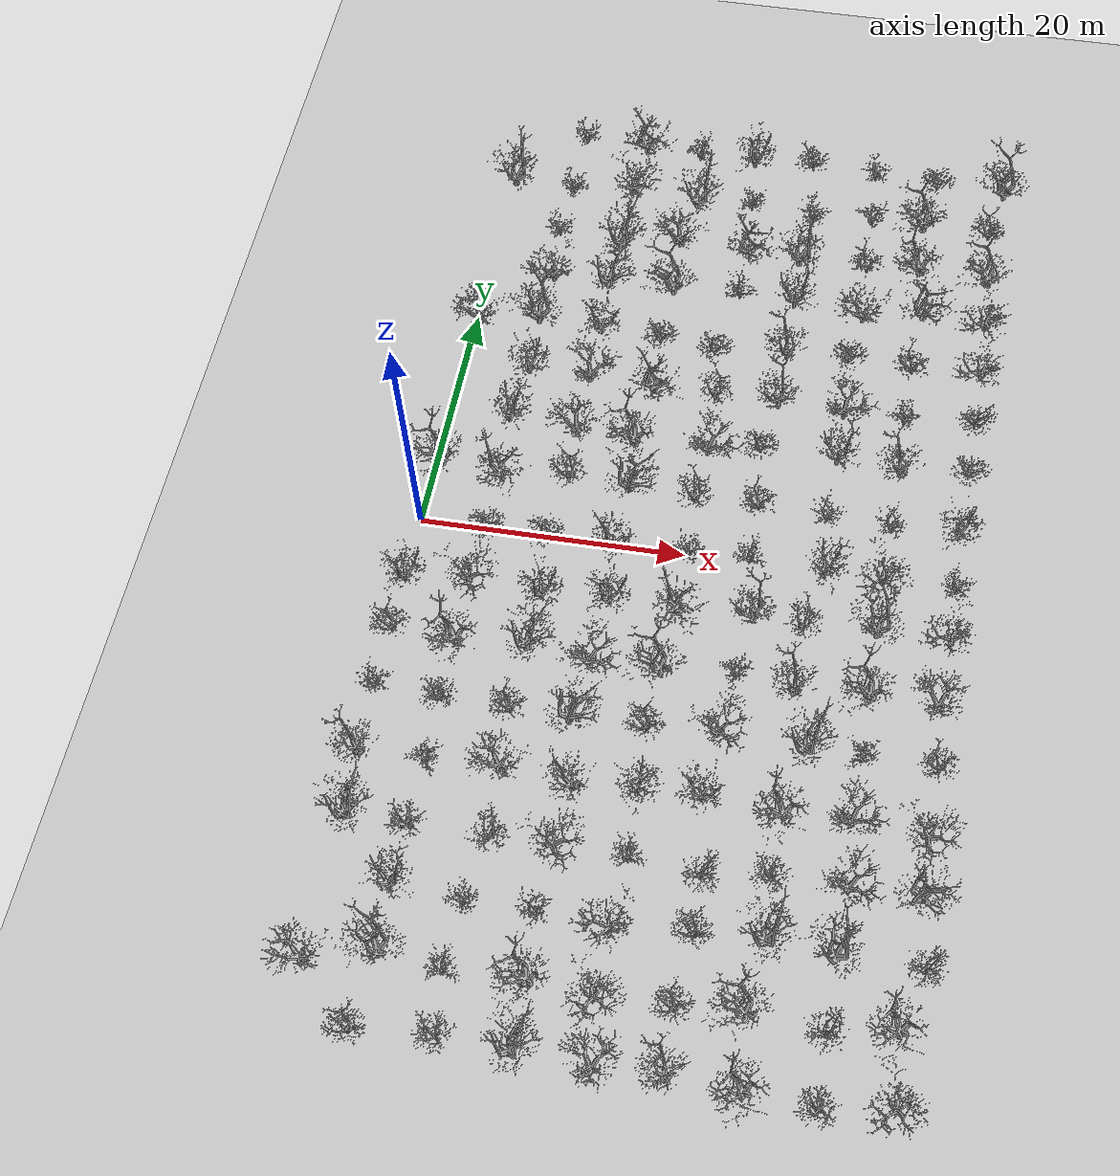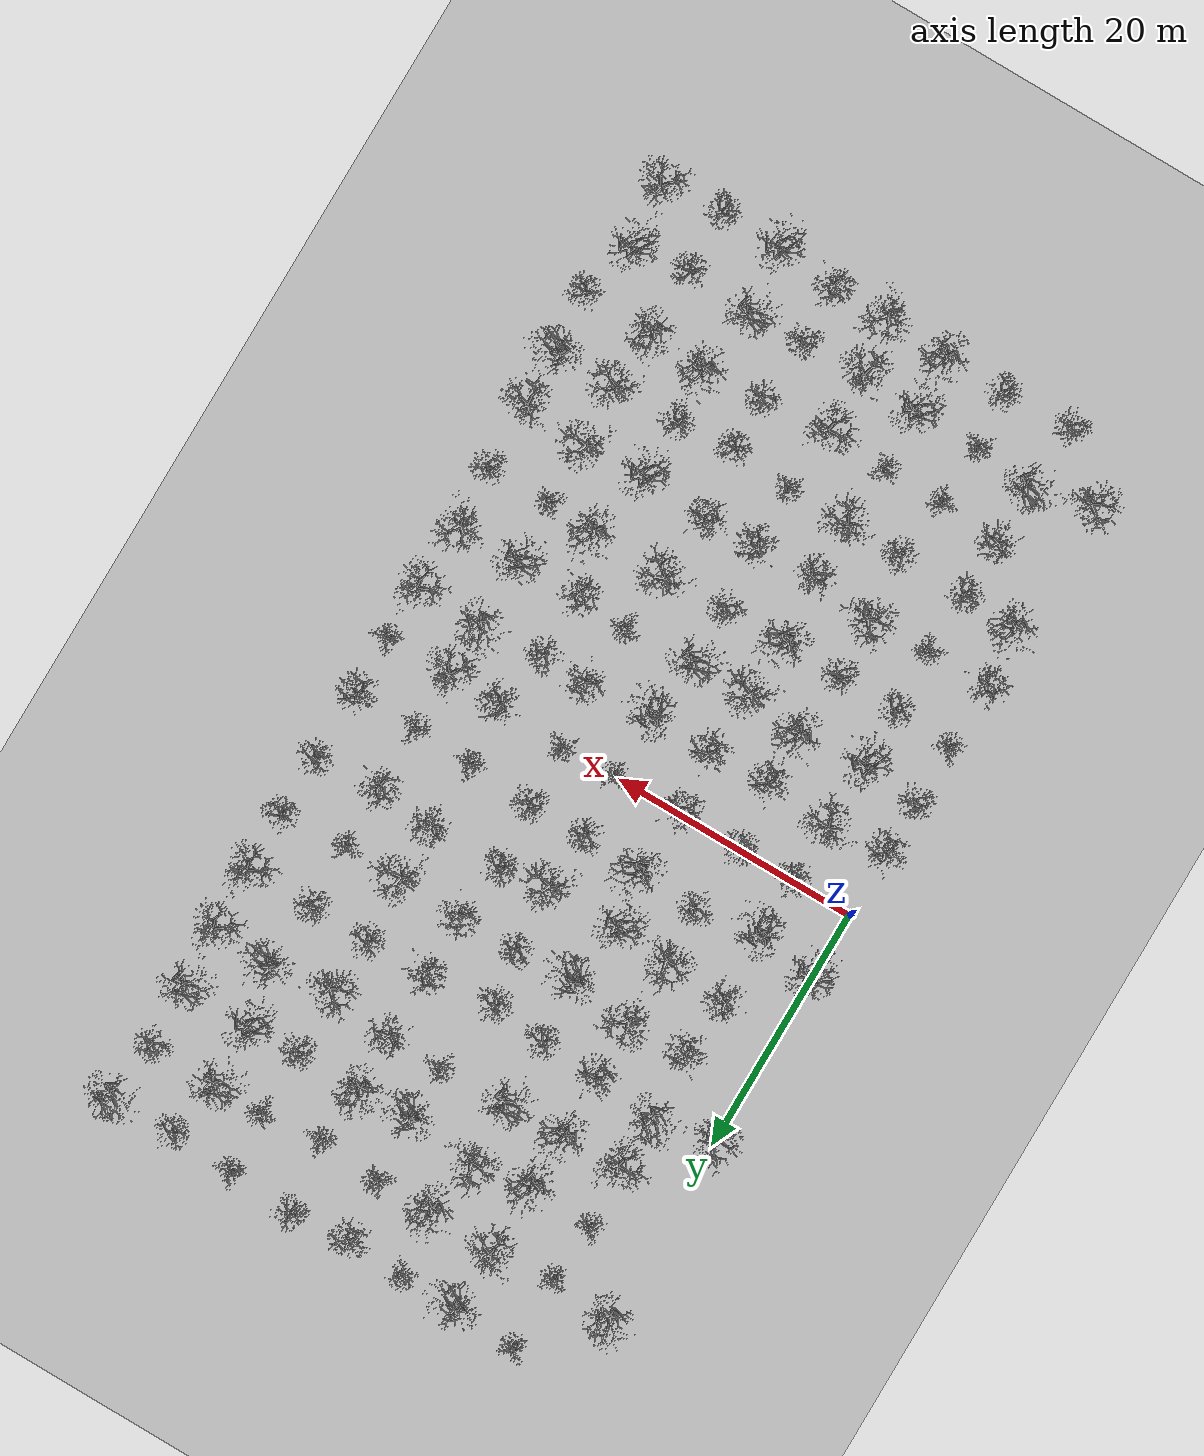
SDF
<sdf version="1.8">
 <world name="random_flat_forest">
  <model name="ground_plane">
   <static>true</static>
   <link name="link">
    <collision name="collision">
     <geometry><plane><normal>0 0 1</normal><size>100 100</size></plane></geometry>
    </collision>
    <visual name="visual">
     <geometry><plane><normal>0 0 1</normal><size>100 100</size></plane></geometry>
     <material>
      <script><uri>file://media/materials/scripts/gazebo.material</uri><name>Gazebo/Gray</name></script>
     </material>
    </visual>
   </link>
  </model>
  <include>
   <uri>model://random_tree_0</uri>
   <name>tree_137</name>
   <pose>0.17 -35.61 0 0 0 2.75</pose>
   <scale>0.95 0.91 0.93</scale>
  </include>
  <include>
   <uri>model://random_tree_2</uri>
   <name>tree_139</name>
   <pose>0.41 -24.93 0 0 0 5.55</pose>
   <scale>1.12 1.20 0.94</scale>
  </include>
  <include>
   <uri>model://random_tree_3</uri>
   <name>tree_140</name>
   <pose>0.11 -20.01 0 0 0 1.44</pose>
   <scale>0.96 1.01 1.20</scale>
  </include>
  <include>
   <uri>model://random_tree_1</uri>
   <name>tree_141</name>
   <pose>0.04 -14.54 0 0 0 2.81</pose>
   <scale>1.13 1.20 1.03</scale>
  </include>
  <include>
   <uri>model://random_tree_4</uri>
   <name>tree_142</name>
   <pose>0.13 -9.78 0 0 0 6.24</pose>
   <scale>1.02 1.07 0.99</scale>
  </include>
  <include>
   <uri>model://random_tree_3</uri>
   <name>tree_143</name>
   <pose>0.03 -5.33 0 0 0 3.39</pose>
   <scale>0.92 0.87 1.06</scale>
  </include>
  <include>
   <uri>model://random_tree_2</uri>
   <name>tree_145</name>
   <pose>0.42 5.44 0 0 0 1.75</pose>
   <scale>1.17 1.25 1.05</scale>
  </include>
  <include>
   <uri>model://random_tree_0</uri>
   <name>tree_148</name>
   <pose>0.27 19.60 0 0 0 2.46</pose>
   <scale>1.11 1.04 1.16</scale>
  </include>
  <include>
   <uri>model://random_tree_2</uri>
   <name>tree_151</name>
   <pose>0.04 34.80 0 0 0 5.98</pose>
   <scale>1.03 1.07 1.11</scale>
  </include>
  <include>
   <uri>model://random_tree_4</uri>
   <name>tree_153</name>
   <pose>4.48 -39.91 0 0 0 5.88</pose>
   <scale>1.03 0.98 1.17</scale>
  </include>
  <include>
   <uri>model://random_tree_2</uri>
   <name>tree_154</name>
   <pose>5.12 -34.40 0 0 0 0.73</pose>
   <scale>1.14 1.07 1.04</scale>
  </include>
  <include>
   <uri>model://random_tree_3</uri>
   <name>tree_155</name>
   <pose>4.68 -29.61 0 0 0 5.25</pose>
   <scale>0.96 0.93 0.94</scale>
  </include>
  <include>
   <uri>model://random_tree_4</uri>
   <name>tree_156</name>
   <pose>4.91 -24.94 0 0 0 1.19</pose>
   <scale>0.96 1.04 1.09</scale>
  </include>
  <include>
   <uri>model://random_tree_1</uri>
   <name>tree_157</name>
   <pose>5.05 -20.06 0 0 0 5.87</pose>
   <scale>1.05 1.09 0.97</scale>
  </include>
  <include>
   <uri>model://random_tree_4</uri>
   <name>tree_158</name>
   <pose>4.89 -14.86 0 0 0 1.47</pose>
   <scale>0.93 0.86 1.01</scale>
  </include>
  <include>
   <uri>model://random_tree_2</uri>
   <name>tree_159</name>
   <pose>4.94 -10.15 0 0 0 2.24</pose>
   <scale>1.14 1.25 1.20</scale>
  </include>
  <include>
   <uri>model://random_tree_0</uri>
   <name>tree_160</name>
   <pose>4.66 -4.83 0 0 0 5.36</pose>
   <scale>1.03 1.11 0.92</scale>
  </include>
  <include>
   <uri>model://random_tree_4</uri>
   <name>tree_161</name>
   <pose>5.01 -0.11 0 0 0 2.17</pose>
   <scale>1.10 1.03 0.91</scale>
  </include>
  <include>
   <uri>model://random_tree_2</uri>
   <name>tree_162</name>
   <pose>5.14 4.81 0 0 0 2.87</pose>
   <scale>0.97 1.07 1.15</scale>
  </include>
  <include>
   <uri>model://random_tree_3</uri>
   <name>tree_163</name>
   <pose>4.61 10.32 0 0 0 4.64</pose>
   <scale>1.04 1.02 1.06</scale>
  </include>
  <include>
   <uri>model://random_tree_3</uri>
   <name>tree_164</name>
   <pose>5.16 15.21 0 0 0 3.76</pose>
   <scale>1.18 1.17 1.19</scale>
  </include>
  <include>
   <uri>model://random_tree_2</uri>
   <name>tree_165</name>
   <pose>4.91 20.38 0 0 0 0.21</pose>
   <scale>1.01 1.04 1.18</scale>
  </include>
  <include>
   <uri>model://random_tree_0</uri>
   <name>tree_166</name>
   <pose>5.25 24.89 0 0 0 3.48</pose>
   <scale>1.10 1.19 1.13</scale>
  </include>
  <include>
   <uri>model://random_tree_1</uri>
   <name>tree_167</name>
   <pose>4.78 29.83 0 0 0 2.90</pose>
   <scale>1.14 1.17 1.17</scale>
  </include>
  <include>
   <uri>model://random_tree_1</uri>
   <name>tree_168</name>
   <pose>5.04 34.59 0 0 0 3.39</pose>
   <scale>1.17 1.26 1.04</scale>
  </include>
  <include>
   <uri>model://random_tree_1</uri>
   <name>tree_169</name>
   <pose>5.08 40.49 0 0 0 3.17</pose>
   <scale>1.11 1.01 0.92</scale>
  </include>
  <include>
   <uri>model://random_tree_4</uri>
   <name>tree_170</name>
   <pose>10.16 -39.41 0 0 0 1.00</pose>
   <scale>0.97 0.93 1.13</scale>
  </include>
  <include>
   <uri>model://random_tree_1</uri>
   <name>tree_171</name>
   <pose>9.62 -34.99 0 0 0 0.19</pose>
   <scale>0.94 0.94 1.16</scale>
  </include>
  <include>
   <uri>model://random_tree_1</uri>
   <name>tree_172</name>
   <pose>9.84 -30.00 0 0 0 3.99</pose>
   <scale>1.10 1.12 0.97</scale>
  </include>
  <include>
   <uri>model://random_tree_4</uri>
   <name>tree_173</name>
   <pose>10.51 -25.10 0 0 0 4.16</pose>
   <scale>1.09 1.00 1.19</scale>
  </include>
  <include>
   <uri>model://random_tree_0</uri>
   <name>tree_174</name>
   <pose>10.17 -19.73 0 0 0 2.50</pose>
   <scale>0.92 0.88 1.11</scale>
  </include>
  <include>
   <uri>model://random_tree_4</uri>
   <name>tree_175</name>
   <pose>9.92 -15.06 0 0 0 0.01</pose>
   <scale>1.20 1.30 1.18</scale>
  </include>
  <include>
   <uri>model://random_tree_2</uri>
   <name>tree_176</name>
   <pose>10.04 -9.75 0 0 0 5.20</pose>
   <scale>0.94 0.99 0.93</scale>
  </include>
  <include>
   <uri>model://random_tree_3</uri>
   <name>tree_177</name>
   <pose>10.21 -5.32 0 0 0 3.35</pose>
   <scale>0.98 1.03 1.17</scale>
  </include>
  <include>
   <uri>model://random_tree_4</uri>
   <name>tree_178</name>
   <pose>9.58 -0.07 0 0 0 1.92</pose>
   <scale>1.11 1.06 1.02</scale>
  </include>
  <include>
   <uri>model://random_tree_4</uri>
   <name>tree_179</name>
   <pose>10.19 5.44 0 0 0 5.21</pose>
   <scale>1.01 1.07 1.01</scale>
  </include>
  <include>
   <uri>model://random_tree_0</uri>
   <name>tree_180</name>
   <pose>10.01 9.86 0 0 0 2.09</pose>
   <scale>1.05 0.95 1.19</scale>
  </include>
  <include>
   <uri>model://random_tree_0</uri>
   <name>tree_181</name>
   <pose>10.10 15.20 0 0 0 0.95</pose>
   <scale>0.96 0.91 0.91</scale>
  </include>
  <include>
   <uri>model://random_tree_3</uri>
   <name>tree_182</name>
   <pose>10.07 20.11 0 0 0 2.85</pose>
   <scale>0.95 0.91 1.16</scale>
  </include>
  <include>
   <uri>model://random_tree_2</uri>
   <name>tree_183</name>
   <pose>9.73 24.93 0 0 0 5.09</pose>
   <scale>1.04 1.00 1.07</scale>
  </include>
  <include>
   <uri>model://random_tree_2</uri>
   <name>tree_184</name>
   <pose>9.93 29.25 0 0 0 5.39</pose>
   <scale>1.05 1.08 1.17</scale>
  </include>
  <include>
   <uri>model://random_tree_0</uri>
   <name>tree_185</name>
   <pose>10.03 35.43 0 0 0 4.93</pose>
   <scale>1.08 1.19 0.92</scale>
  </include>
  <include>
   <uri>model://random_tree_2</uri>
   <name>tree_186</name>
   <pose>10.24 40.28 0 0 0 3.68</pose>
   <scale>0.96 0.89 1.12</scale>
  </include>
  <include>
   <uri>model://random_tree_2</uri>
   <name>tree_187</name>
   <pose>15.02 -39.65 0 0 0 5.37</pose>
   <scale>1.03 0.95 0.97</scale>
  </include>
  <include>
   <uri>model://random_tree_2</uri>
   <name>tree_188</name>
   <pose>15.25 -34.85 0 0 0 1.82</pose>
   <scale>1.17 1.15 0.91</scale>
  </include>
  <include>
   <uri>model://random_tree_1</uri>
   <name>tree_189</name>
   <pose>14.82 -30.00 0 0 0 1.62</pose>
   <scale>1.06 1.03 1.19</scale>
  </include>
  <include>
   <uri>model://random_tree_0</uri>
   <name>tree_190</name>
   <pose>15.00 -24.99 0 0 0 5.48</pose>
   <scale>0.98 0.98 0.94</scale>
  </include>
  <include>
   <uri>model://random_tree_3</uri>
   <name>tree_191</name>
   <pose>15.39 -20.39 0 0 0 1.85</pose>
   <scale>1.13 1.15 1.12</scale>
  </include>
  <include>
   <uri>model://random_tree_2</uri>
   <name>tree_192</name>
   <pose>14.26 -15.07 0 0 0 4.72</pose>
   <scale>1.03 1.07 1.19</scale>
  </include>
  <include>
   <uri>model://random_tree_0</uri>
   <name>tree_193</name>
   <pose>14.71 -10.40 0 0 0 6.18</pose>
   <scale>1.04 1.04 1.13</scale>
  </include>
  <include>
   <uri>model://random_tree_3</uri>
   <name>tree_194</name>
   <pose>15.22 -4.96 0 0 0 3.12</pose>
   <scale>0.94 1.00 1.18</scale>
  </include>
  <include>
   <uri>model://random_tree_3</uri>
   <name>tree_195</name>
   <pose>14.82 -0.15 0 0 0 2.35</pose>
   <scale>1.02 1.05 0.97</scale>
  </include>
  <include>
   <uri>model://random_tree_2</uri>
   <name>tree_196</name>
   <pose>14.89 5.19 0 0 0 4.69</pose>
   <scale>1.01 0.92 0.94</scale>
  </include>
  <include>
   <uri>model://random_tree_2</uri>
   <name>tree_197</name>
   <pose>14.62 9.55 0 0 0 1.73</pose>
   <scale>1.20 1.19 1.17</scale>
  </include>
  <include>
   <uri>model://random_tree_2</uri>
   <name>tree_198</name>
   <pose>15.18 14.90 0 0 0 3.48</pose>
   <scale>0.95 0.85 0.91</scale>
  </include>
  <include>
   <uri>model://random_tree_4</uri>
   <name>tree_199</name>
   <pose>14.85 19.82 0 0 0 2.03</pose>
   <scale>1.00 0.99 1.11</scale>
  </include>
  <include>
   <uri>model://random_tree_2</uri>
   <name>tree_200</name>
   <pose>15.06 25.07 0 0 0 1.10</pose>
   <scale>1.04 1.11 0.99</scale>
  </include>
  <include>
   <uri>model://random_tree_0</uri>
   <name>tree_201</name>
   <pose>14.76 30.22 0 0 0 2.17</pose>
   <scale>0.99 0.91 0.90</scale>
  </include>
  <include>
   <uri>model://random_tree_2</uri>
   <name>tree_202</name>
   <pose>15.53 34.64 0 0 0 5.63</pose>
   <scale>1.15 1.26 1.04</scale>
  </include>
  <include>
   <uri>model://random_tree_1</uri>
   <name>tree_203</name>
   <pose>14.91 40.02 0 0 0 6.02</pose>
   <scale>0.92 0.98 1.02</scale>
  </include>
  <include>
   <uri>model://random_tree_0</uri>
   <name>tree_204</name>
   <pose>20.46 -40.00 0 0 0 1.23</pose>
   <scale>1.00 0.97 1.19</scale>
  </include>
  <include>
   <uri>model://random_tree_0</uri>
   <name>tree_205</name>
   <pose>19.69 -35.25 0 0 0 4.70</pose>
   <scale>1.00 0.96 0.97</scale>
  </include>
  <include>
   <uri>model://random_tree_0</uri>
   <name>tree_206</name>
   <pose>19.91 -30.30 0 0 0 3.49</pose>
   <scale>0.99 0.92 0.98</scale>
  </include>
  <include>
   <uri>model://random_tree_1</uri>
   <name>tree_207</name>
   <pose>20.24 -25.12 0 0 0 0.35</pose>
   <scale>1.03 1.02 1.04</scale>
  </include>
  <include>
   <uri>model://random_tree_3</uri>
   <name>tree_208</name>
   <pose>19.93 -20.07 0 0 0 4.12</pose>
   <scale>1.16 1.23 1.11</scale>
  </include>
  <include>
   <uri>model://random_tree_4</uri>
   <name>tree_209</name>
   <pose>19.73 -15.02 0 0 0 5.87</pose>
   <scale>0.98 0.93 0.98</scale>
  </include>
  <include>
   <uri>model://random_tree_2</uri>
   <name>tree_210</name>
   <pose>19.93 -10.35 0 0 0 1.26</pose>
   <scale>0.93 0.89 1.13</scale>
  </include>
  <include>
   <uri>model://random_tree_2</uri>
   <name>tree_211</name>
   <pose>20.39 -5.03 0 0 0 2.93</pose>
   <scale>0.92 0.91 1.02</scale>
  </include>
  <include>
   <uri>model://random_tree_1</uri>
   <name>tree_212</name>
   <pose>20.34 0.01 0 0 0 3.60</pose>
   <scale>0.92 1.00 1.05</scale>
  </include>
  <include>
   <uri>model://random_tree_4</uri>
   <name>tree_213</name>
   <pose>19.98 4.91 0 0 0 4.77</pose>
   <scale>1.05 1.14 1.04</scale>
  </include>
  <include>
   <uri>model://random_tree_0</uri>
   <name>tree_214</name>
   <pose>20.28 9.54 0 0 0 0.14</pose>
   <scale>0.93 1.00 0.94</scale>
  </include>
  <include>
   <uri>model://random_tree_4</uri>
   <name>tree_215</name>
   <pose>20.01 14.84 0 0 0 4.68</pose>
   <scale>1.18 1.14 1.05</scale>
  </include>
  <include>
   <uri>model://random_tree_4</uri>
   <name>tree_216</name>
   <pose>19.31 19.33 0 0 0 1.97</pose>
   <scale>0.93 0.85 1.13</scale>
  </include>
  <include>
   <uri>model://random_tree_1</uri>
   <name>tree_217</name>
   <pose>20.42 25.36 0 0 0 0.61</pose>
   <scale>1.02 1.07 1.16</scale>
  </include>
  <include>
   <uri>model://random_tree_2</uri>
   <name>tree_218</name>
   <pose>20.47 29.88 0 0 0 3.66</pose>
   <scale>1.00 1.07 1.15</scale>
  </include>
  <include>
   <uri>model://random_tree_1</uri>
   <name>tree_219</name>
   <pose>20.04 35.03 0 0 0 4.53</pose>
   <scale>0.98 1.07 1.06</scale>
  </include>
  <include>
   <uri>model://random_tree_3</uri>
   <name>tree_220</name>
   <pose>19.58 40.00 0 0 0 3.34</pose>
   <scale>1.18 1.25 1.11</scale>
  </include>
  <include>
   <uri>model://random_tree_3</uri>
   <name>tree_221</name>
   <pose>25.18 -39.85 0 0 0 0.79</pose>
   <scale>1.05 0.98 1.15</scale>
  </include>
  <include>
   <uri>model://random_tree_4</uri>
   <name>tree_222</name>
   <pose>25.00 -35.16 0 0 0 6.08</pose>
   <scale>1.16 1.06 0.93</scale>
  </include>
  <include>
   <uri>model://random_tree_4</uri>
   <name>tree_223</name>
   <pose>25.44 -29.91 0 0 0 5.66</pose>
   <scale>0.91 0.83 1.16</scale>
  </include>
  <include>
   <uri>model://random_tree_4</uri>
   <name>tree_224</name>
   <pose>25.23 -25.63 0 0 0 3.20</pose>
   <scale>0.98 0.96 0.99</scale>
  </include>
  <include>
   <uri>model://random_tree_3</uri>
   <name>tree_225</name>
   <pose>24.43 -19.75 0 0 0 2.55</pose>
   <scale>1.11 1.09 1.17</scale>
  </include>
  <include>
   <uri>model://random_tree_0</uri>
   <name>tree_226</name>
   <pose>24.71 -14.59 0 0 0 5.80</pose>
   <scale>1.10 1.13 1.14</scale>
  </include>
  <include>
   <uri>model://random_tree_1</uri>
   <name>tree_227</name>
   <pose>25.28 -9.85 0 0 0 5.33</pose>
   <scale>1.03 1.03 1.19</scale>
  </include>
  <include>
   <uri>model://random_tree_3</uri>
   <name>tree_228</name>
   <pose>25.87 -4.89 0 0 0 0.08</pose>
   <scale>1.20 1.19 1.16</scale>
  </include>
  <include>
   <uri>model://random_tree_1</uri>
   <name>tree_229</name>
   <pose>24.86 0.13 0 0 0 0.17</pose>
   <scale>1.02 1.01 1.02</scale>
  </include>
  <include>
   <uri>model://random_tree_4</uri>
   <name>tree_230</name>
   <pose>24.85 5.02 0 0 0 0.05</pose>
   <scale>1.14 1.21 1.02</scale>
  </include>
  <include>
   <uri>model://random_tree_4</uri>
   <name>tree_231</name>
   <pose>24.24 10.34 0 0 0 1.76</pose>
   <scale>1.09 1.10 1.03</scale>
  </include>
  <include>
   <uri>model://random_tree_3</uri>
   <name>tree_232</name>
   <pose>25.01 14.88 0 0 0 0.29</pose>
   <scale>1.12 1.21 1.12</scale>
  </include>
  <include>
   <uri>model://random_tree_3</uri>
   <name>tree_233</name>
   <pose>25.00 19.82 0 0 0 0.87</pose>
   <scale>0.94 0.88 0.93</scale>
  </include>
  <include>
   <uri>model://random_tree_3</uri>
   <name>tree_234</name>
   <pose>24.87 25.17 0 0 0 5.40</pose>
   <scale>1.06 1.05 0.96</scale>
  </include>
  <include>
   <uri>model://random_tree_2</uri>
   <name>tree_235</name>
   <pose>24.68 29.71 0 0 0 5.84</pose>
   <scale>1.07 1.16 1.14</scale>
  </include>
  <include>
   <uri>model://random_tree_1</uri>
   <name>tree_236</name>
   <pose>25.25 34.56 0 0 0 2.42</pose>
   <scale>1.01 1.08 0.96</scale>
  </include>
  <include>
   <uri>model://random_tree_4</uri>
   <name>tree_237</name>
   <pose>24.49 40.41 0 0 0 1.33</pose>
   <scale>1.00 1.04 1.02</scale>
  </include>
  <include>
   <uri>model://random_tree_2</uri>
   <name>tree_238</name>
   <pose>30.26 -40.04 0 0 0 2.12</pose>
   <scale>1.15 1.09 1.15</scale>
  </include>
  <include>
   <uri>model://random_tree_2</uri>
   <name>tree_239</name>
   <pose>29.65 -34.91 0 0 0 1.19</pose>
   <scale>1.19 1.30 0.96</scale>
  </include>
  <include>
   <uri>model://random_tree_2</uri>
   <name>tree_240</name>
   <pose>30.15 -29.59 0 0 0 5.53</pose>
   <scale>1.13 1.06 1.04</scale>
  </include>
  <include>
   <uri>model://random_tree_4</uri>
   <name>tree_241</name>
   <pose>30.00 -25.02 0 0 0 1.02</pose>
   <scale>0.97 1.00 1.10</scale>
  </include>
  <include>
   <uri>model://random_tree_2</uri>
   <name>tree_242</name>
   <pose>30.21 -20.27 0 0 0 2.08</pose>
   <scale>0.92 0.89 1.04</scale>
  </include>
  <include>
   <uri>model://random_tree_2</uri>
   <name>tree_243</name>
   <pose>30.95 -14.96 0 0 0 5.38</pose>
   <scale>0.93 0.96 0.98</scale>
  </include>
  <include>
   <uri>model://random_tree_3</uri>
   <name>tree_244</name>
   <pose>29.66 -10.34 0 0 0 0.81</pose>
   <scale>1.15 1.08 1.13</scale>
  </include>
  <include>
   <uri>model://random_tree_4</uri>
   <name>tree_245</name>
   <pose>29.51 -5.07 0 0 0 4.33</pose>
   <scale>1.12 1.17 1.01</scale>
  </include>
  <include>
   <uri>model://random_tree_3</uri>
   <name>tree_246</name>
   <pose>30.45 -0.22 0 0 0 4.53</pose>
   <scale>0.95 0.94 0.99</scale>
  </include>
  <include>
   <uri>model://random_tree_1</uri>
   <name>tree_247</name>
   <pose>30.08 4.82 0 0 0 2.42</pose>
   <scale>1.18 1.09 1.09</scale>
  </include>
  <include>
   <uri>model://random_tree_3</uri>
   <name>tree_248</name>
   <pose>30.14 10.19 0 0 0 5.30</pose>
   <scale>0.97 1.02 1.15</scale>
  </include>
  <include>
   <uri>model://random_tree_0</uri>
   <name>tree_249</name>
   <pose>30.13 14.67 0 0 0 0.39</pose>
   <scale>0.95 0.91 1.01</scale>
  </include>
  <include>
   <uri>model://random_tree_4</uri>
   <name>tree_250</name>
   <pose>29.88 20.14 0 0 0 1.99</pose>
   <scale>1.12 1.12 1.12</scale>
  </include>
  <include>
   <uri>model://random_tree_0</uri>
   <name>tree_251</name>
   <pose>30.46 24.52 0 0 0 2.68</pose>
   <scale>0.94 0.85 0.90</scale>
  </include>
  <include>
   <uri>model://random_tree_4</uri>
   <name>tree_252</name>
   <pose>30.24 29.78 0 0 0 0.18</pose>
   <scale>1.15 1.16 1.00</scale>
  </include>
  <include>
   <uri>model://random_tree_1</uri>
   <name>tree_253</name>
   <pose>30.08 35.02 0 0 0 5.46</pose>
   <scale>1.07 1.09 0.96</scale>
  </include>
  <include>
   <uri>model://random_tree_1</uri>
   <name>tree_254</name>
   <pose>29.84 40.01 0 0 0 2.56</pose>
   <scale>1.11 1.16 0.96</scale>
  </include>
  <include>
   <uri>model://random_tree_4</uri>
   <name>tree_255</name>
   <pose>35.13 -40.29 0 0 0 1.19</pose>
   <scale>1.00 0.91 0.94</scale>
  </include>
  <include>
   <uri>model://random_tree_4</uri>
   <name>tree_256</name>
   <pose>34.84 -35.31 0 0 0 3.34</pose>
   <scale>1.00 0.98 1.15</scale>
  </include>
  <include>
   <uri>model://random_tree_2</uri>
   <name>tree_257</name>
   <pose>34.88 -29.99 0 0 0 5.94</pose>
   <scale>1.07 1.17 1.11</scale>
  </include>
  <include>
   <uri>model://random_tree_0</uri>
   <name>tree_258</name>
   <pose>35.19 -25.02 0 0 0 6.15</pose>
   <scale>1.02 0.95 1.06</scale>
  </include>
  <include>
   <uri>model://random_tree_0</uri>
   <name>tree_259</name>
   <pose>34.82 -20.11 0 0 0 0.21</pose>
   <scale>1.00 1.05 0.97</scale>
  </include>
  <include>
   <uri>model://random_tree_1</uri>
   <name>tree_260</name>
   <pose>34.91 -15.05 0 0 0 4.75</pose>
   <scale>1.03 0.96 0.91</scale>
  </include>
  <include>
   <uri>model://random_tree_2</uri>
   <name>tree_261</name>
   <pose>35.02 -10.06 0 0 0 1.57</pose>
   <scale>1.20 1.20 0.98</scale>
  </include>
  <include>
   <uri>model://random_tree_2</uri>
   <name>tree_262</name>
   <pose>34.89 -4.69 0 0 0 6.23</pose>
   <scale>1.07 1.07 0.94</scale>
  </include>
  <include>
   <uri>model://random_tree_0</uri>
   <name>tree_263</name>
   <pose>34.82 -0.16 0 0 0 4.41</pose>
   <scale>1.14 1.15 1.01</scale>
  </include>
  <include>
   <uri>model://random_tree_1</uri>
   <name>tree_264</name>
   <pose>34.99 4.57 0 0 0 2.17</pose>
   <scale>0.91 0.96 1.02</scale>
  </include>
  <include>
   <uri>model://random_tree_3</uri>
   <name>tree_265</name>
   <pose>35.08 9.74 0 0 0 0.99</pose>
   <scale>1.11 1.04 1.01</scale>
  </include>
  <include>
   <uri>model://random_tree_1</uri>
   <name>tree_266</name>
   <pose>34.83 14.79 0 0 0 3.73</pose>
   <scale>1.12 1.05 1.14</scale>
  </include>
  <include>
   <uri>model://random_tree_4</uri>
   <name>tree_267</name>
   <pose>34.92 19.85 0 0 0 0.05</pose>
   <scale>0.91 0.98 0.96</scale>
  </include>
  <include>
   <uri>model://random_tree_2</uri>
   <name>tree_268</name>
   <pose>35.18 25.56 0 0 0 4.04</pose>
   <scale>1.16 1.10 0.93</scale>
  </include>
  <include>
   <uri>model://random_tree_2</uri>
   <name>tree_269</name>
   <pose>34.48 30.16 0 0 0 2.01</pose>
   <scale>1.06 1.13 0.91</scale>
  </include>
  <include>
   <uri>model://random_tree_2</uri>
   <name>tree_270</name>
   <pose>34.38 34.98 0 0 0 1.29</pose>
   <scale>1.15 1.16 1.01</scale>
  </include>
  <include>
   <uri>model://random_tree_4</uri>
   <name>tree_271</name>
   <pose>35.02 39.78 0 0 0 1.95</pose>
   <scale>1.05 1.13 1.03</scale>
  </include>
  <include>
   <uri>model://random_tree_0</uri>
   <name>tree_272</name>
   <pose>39.98 -39.58 0 0 0 4.33</pose>
   <scale>1.17 1.24 1.10</scale>
  </include>
  <include>
   <uri>model://random_tree_2</uri>
   <name>tree_273</name>
   <pose>39.69 -34.47 0 0 0 2.02</pose>
   <scale>0.99 1.03 1.12</scale>
  </include>
  <include>
   <uri>model://random_tree_4</uri>
   <name>tree_274</name>
   <pose>40.80 -29.96 0 0 0 3.06</pose>
   <scale>1.18 1.26 1.19</scale>
  </include>
  <include>
   <uri>model://random_tree_2</uri>
   <name>tree_275</name>
   <pose>40.09 -24.89 0 0 0 4.04</pose>
   <scale>1.15 1.07 0.92</scale>
  </include>
  <include>
   <uri>model://random_tree_0</uri>
   <name>tree_276</name>
   <pose>40.13 -20.46 0 0 0 5.05</pose>
   <scale>1.09 1.13 0.94</scale>
  </include>
  <include>
   <uri>model://random_tree_4</uri>
   <name>tree_277</name>
   <pose>40.40 -15.01 0 0 0 0.23</pose>
   <scale>1.03 1.04 1.19</scale>
  </include>
  <include>
   <uri>model://random_tree_0</uri>
   <name>tree_278</name>
   <pose>39.86 -10.18 0 0 0 1.39</pose>
   <scale>1.18 1.16 0.92</scale>
  </include>
  <include>
   <uri>model://random_tree_0</uri>
   <name>tree_279</name>
   <pose>40.22 -4.44 0 0 0 3.85</pose>
   <scale>1.15 1.10 0.94</scale>
  </include>
  <include>
   <uri>model://random_tree_1</uri>
   <name>tree_280</name>
   <pose>40.19 -0.13 0 0 0 2.62</pose>
   <scale>1.02 1.01 1.09</scale>
  </include>
  <include>
   <uri>model://random_tree_3</uri>
   <name>tree_281</name>
   <pose>39.94 4.71 0 0 0 3.49</pose>
   <scale>0.92 0.84 1.15</scale>
  </include>
  <include>
   <uri>model://random_tree_4</uri>
   <name>tree_282</name>
   <pose>40.23 10.39 0 0 0 2.08</pose>
   <scale>0.97 1.05 1.02</scale>
  </include>
  <include>
   <uri>model://random_tree_4</uri>
   <name>tree_283</name>
   <pose>40.26 15.24 0 0 0 2.56</pose>
   <scale>1.14 1.11 1.16</scale>
  </include>
  <include>
   <uri>model://random_tree_0</uri>
   <name>tree_284</name>
   <pose>40.35 20.14 0 0 0 3.90</pose>
   <scale>1.09 1.10 0.94</scale>
  </include>
  <include>
   <uri>model://random_tree_0</uri>
   <name>tree_285</name>
   <pose>40.23 25.17 0 0 0 4.03</pose>
   <scale>1.04 1.09 1.08</scale>
  </include>
  <include>
   <uri>model://random_tree_2</uri>
   <name>tree_286</name>
   <pose>40.14 29.82 0 0 0 1.26</pose>
   <scale>1.08 1.00 1.16</scale>
  </include>
  <include>
   <uri>model://random_tree_4</uri>
   <name>tree_287</name>
   <pose>39.73 34.84 0 0 0 5.66</pose>
   <scale>1.11 1.09 1.12</scale>
  </include>
  <include>
   <uri>model://random_tree_2</uri>
   <name>tree_288</name>
   <pose>40.60 39.59 0 0 0 0.45</pose>
   <scale>0.92 0.96 0.99</scale>
  </include>
 </world>
</sdf>
